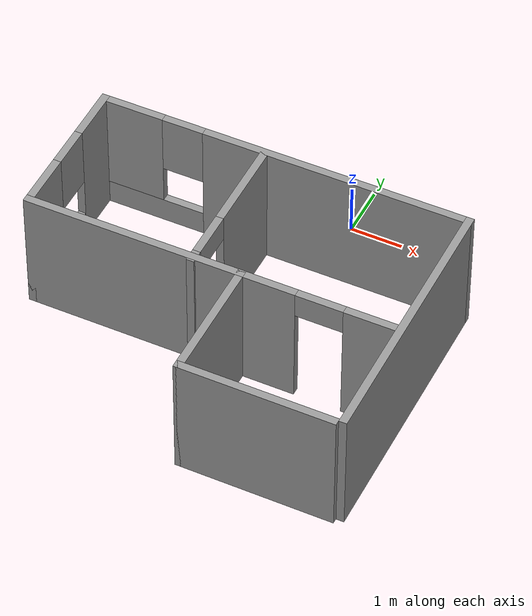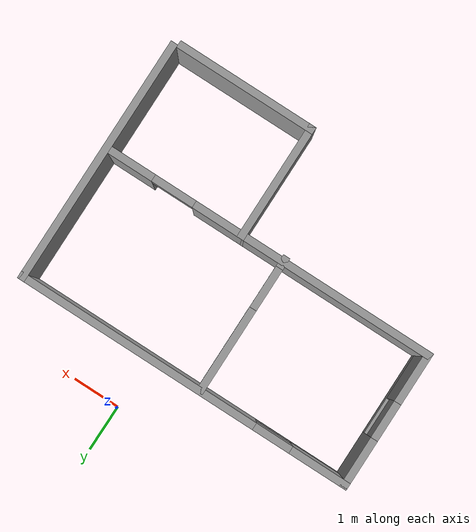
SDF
<?xml version='1.0'?>
<sdf version='1.7'>
  <model name='work'>
    <pose>-0.82 -3.2325 0 0 -0 0</pose>
    <link name='Wall_0'>
      <collision name='Wall_0_Collision'>
        <geometry>
          <box>
            <size>5.25 0.15 2.5</size>
          </box>
        </geometry>
        <pose>0 0 1.25 0 -0 0</pose>
      </collision>
      <visual name='Wall_0_Visual'>
        <pose>0 0 1.25 0 -0 0</pose>
        <geometry>
          <box>
            <size>5.25 0.15 2.5</size>
          </box>
        </geometry>
        <material>
          <script>
            <uri>file://media/materials/scripts/gazebo.material</uri>
            <name>Gazebo/Grey</name>
          </script>
          <ambient>1 1 1 1</ambient>
        </material>
        <meta>
          <layer>0</layer>
        </meta>
      </visual>
      <pose>3.55 -0.5075 0 0 -0 1.5708</pose>
    </link>
    <link name='Wall_1'>
      <pose>-0 2.0425 0 0 -0 3.14159</pose>
      <visual name='Wall_1_Visual_0'>
        <pose>-1.0325 0 1.25 0 -0 0</pose>
        <geometry>
          <box>
            <size>5.185 0.15 2.5</size>
          </box>
        </geometry>
        <material>
          <script>
            <uri>file://media/materials/scripts/gazebo.material</uri>
            <name>Gazebo/Grey</name>
          </script>
          <ambient>1 1 1 1</ambient>
        </material>
        <meta>
          <layer>0</layer>
        </meta>
      </visual>
      <collision name='Wall_1_Collision_0'>
        <geometry>
          <box>
            <size>5.185 0.15 2.5</size>
          </box>
        </geometry>
        <pose>-1.0325 0 1.25 0 -0 0</pose>
      </collision>
      <visual name='Wall_1_Visual_1'>
        <pose>2.5925 0 0.25 0 -0 0</pose>
        <geometry>
          <box>
            <size>2.065 0.15 0.5</size>
          </box>
        </geometry>
        <material>
          <script>
            <uri>file://media/materials/scripts/gazebo.material</uri>
            <name>Gazebo/Grey</name>
          </script>
          <ambient>1 1 1 1</ambient>
        </material>
        <meta>
          <layer>0</layer>
        </meta>
      </visual>
      <collision name='Wall_1_Collision_1'>
        <geometry>
          <box>
            <size>2.065 0.15 0.5</size>
          </box>
        </geometry>
        <pose>2.5925 0 0.25 0 -0 0</pose>
      </collision>
      <visual name='Wall_1_Visual_2'>
        <pose>2.9925 0 1.5 0 -0 0</pose>
        <geometry>
          <box>
            <size>1.265 0.15 2</size>
          </box>
        </geometry>
        <material>
          <script>
            <uri>file://media/materials/scripts/gazebo.material</uri>
            <name>Gazebo/Grey</name>
          </script>
          <ambient>1 1 1 1</ambient>
        </material>
        <meta>
          <layer>0</layer>
        </meta>
      </visual>
      <collision name='Wall_1_Collision_2'>
        <geometry>
          <box>
            <size>1.265 0.15 2</size>
          </box>
        </geometry>
        <pose>2.9925 0 1.5 0 -0 0</pose>
      </collision>
      <visual name='Wall_1_Visual_3'>
        <pose>1.96 0 1.9 0 -0 0</pose>
        <geometry>
          <box>
            <size>0.8 0.15 1.2</size>
          </box>
        </geometry>
        <material>
          <script>
            <uri>file://media/materials/scripts/gazebo.material</uri>
            <name>Gazebo/Grey</name>
          </script>
          <ambient>1 1 1 1</ambient>
        </material>
        <meta>
          <layer>0</layer>
        </meta>
      </visual>
      <collision name='Wall_1_Collision_3'>
        <geometry>
          <box>
            <size>0.8 0.15 1.2</size>
          </box>
        </geometry>
        <pose>1.96 0 1.9 0 -0 0</pose>
      </collision>
    </link>
    <link name='Wall_2'>
      <pose>-3.55 0.6175 0 0 -0 -1.5708</pose>
      <visual name='Wall_2_Visual_0'>
        <pose>-0.9625 0 1.25 0 -0 0</pose>
        <geometry>
          <box>
            <size>1.075 0.15 2.5</size>
          </box>
        </geometry>
        <material>
          <script>
            <uri>file://media/materials/scripts/gazebo.material</uri>
            <name>Gazebo/Grey</name>
          </script>
          <ambient>1 1 1 1</ambient>
        </material>
        <meta>
          <layer>0</layer>
        </meta>
      </visual>
      <collision name='Wall_2_Collision_0'>
        <geometry>
          <box>
            <size>1.075 0.15 2.5</size>
          </box>
        </geometry>
        <pose>-0.9625 0 1.25 0 -0 0</pose>
      </collision>
      <visual name='Wall_2_Visual_1'>
        <pose>0.5375 0 0.25 0 -0 0</pose>
        <geometry>
          <box>
            <size>1.925 0.15 0.5</size>
          </box>
        </geometry>
        <material>
          <script>
            <uri>file://media/materials/scripts/gazebo.material</uri>
            <name>Gazebo/Grey</name>
          </script>
          <ambient>1 1 1 1</ambient>
        </material>
        <meta>
          <layer>0</layer>
        </meta>
      </visual>
      <collision name='Wall_2_Collision_1'>
        <geometry>
          <box>
            <size>1.925 0.15 0.5</size>
          </box>
        </geometry>
        <pose>0.5375 0 0.25 0 -0 0</pose>
      </collision>
      <visual name='Wall_2_Visual_2'>
        <pose>0.9375 0 1.5 0 -0 0</pose>
        <geometry>
          <box>
            <size>1.125 0.15 2</size>
          </box>
        </geometry>
        <material>
          <script>
            <uri>file://media/materials/scripts/gazebo.material</uri>
            <name>Gazebo/Grey</name>
          </script>
          <ambient>1 1 1 1</ambient>
        </material>
        <meta>
          <layer>0</layer>
        </meta>
      </visual>
      <collision name='Wall_2_Collision_2'>
        <geometry>
          <box>
            <size>1.125 0.15 2</size>
          </box>
        </geometry>
        <pose>0.9375 0 1.5 0 -0 0</pose>
      </collision>
      <visual name='Wall_2_Visual_3'>
        <pose>-0.025 0 1.9 0 -0 0</pose>
        <geometry>
          <box>
            <size>0.8 0.15 1.2</size>
          </box>
        </geometry>
        <material>
          <script>
            <uri>file://media/materials/scripts/gazebo.material</uri>
            <name>Gazebo/Grey</name>
          </script>
          <ambient>1 1 1 1</ambient>
        </material>
        <meta>
          <layer>0</layer>
        </meta>
      </visual>
      <collision name='Wall_2_Collision_3'>
        <geometry>
          <box>
            <size>0.8 0.15 1.2</size>
          </box>
        </geometry>
        <pose>-0.025 0 1.9 0 -0 0</pose>
      </collision>
    </link>
    <link name='Wall_3'>
      <collision name='Wall_3_Collision'>
        <geometry>
          <box>
            <size>4.25 0.15 2.5</size>
          </box>
        </geometry>
        <pose>0 0 1.25 0 -0 0</pose>
      </collision>
      <visual name='Wall_3_Visual'>
        <pose>0 0 1.25 0 -0 0</pose>
        <geometry>
          <box>
            <size>4.25 0.15 2.5</size>
          </box>
        </geometry>
        <material>
          <script>
            <uri>file://media/materials/scripts/gazebo.material</uri>
            <name>Gazebo/Grey</name>
          </script>
          <ambient>1 1 1 1</ambient>
        </material>
        <meta>
          <layer>0</layer>
        </meta>
      </visual>
      <pose>-1.5 -0.8075 0 0 -0 0</pose>
    </link>
    <link name='Wall_4'>
      <collision name='Wall_4_Collision'>
        <geometry>
          <box>
            <size>2.5 0.15 2.5</size>
          </box>
        </geometry>
        <pose>0 0 1.25 0 -0 0</pose>
      </collision>
      <visual name='Wall_4_Visual'>
        <pose>0 0 1.25 0 -0 0</pose>
        <geometry>
          <box>
            <size>2.5 0.15 2.5</size>
          </box>
        </geometry>
        <material>
          <script>
            <uri>file://media/materials/scripts/gazebo.material</uri>
            <name>Gazebo/Grey</name>
          </script>
          <ambient>1 1 1 1</ambient>
        </material>
        <meta>
          <layer>0</layer>
        </meta>
      </visual>
      <pose>0.55 -1.9825 0 0 -0 -1.5708</pose>
    </link>
    <link name='Wall_5'>
      <collision name='Wall_5_Collision'>
        <geometry>
          <box>
            <size>3 0.15 2.5</size>
          </box>
        </geometry>
        <pose>0 0 1.25 0 -0 0</pose>
      </collision>
      <visual name='Wall_5_Visual'>
        <pose>0 0 1.25 0 -0 0</pose>
        <geometry>
          <box>
            <size>3 0.15 2.5</size>
          </box>
        </geometry>
        <material>
          <script>
            <uri>file://media/materials/scripts/gazebo.material</uri>
            <name>Gazebo/Grey</name>
          </script>
          <ambient>1 1 1 1</ambient>
        </material>
        <meta>
          <layer>0</layer>
        </meta>
      </visual>
      <pose>1.975 -3.1575 0 0 -0 0</pose>
    </link>
    <link name='Wall_7'>
      <pose>-0.36 0.5775 0 0 -0 -1.5708</pose>
      <visual name='Wall_7_Visual_0'>
        <pose>-0.5775 0 1.25 0 -0 0</pose>
        <geometry>
          <box>
            <size>1.845 0.15 2.5</size>
          </box>
        </geometry>
        <material>
          <script>
            <uri>file://media/materials/scripts/gazebo.material</uri>
            <name>Gazebo/Grey</name>
          </script>
          <ambient>1 1 1 1</ambient>
        </material>
        <meta>
          <layer>0</layer>
        </meta>
      </visual>
      <collision name='Wall_7_Collision_0'>
        <geometry>
          <box>
            <size>1.845 0.15 2.5</size>
          </box>
        </geometry>
        <pose>-0.5775 0 1.25 0 -0 0</pose>
      </collision>
      <visual name='Wall_7_Visual_1'>
        <pose>1.3725 0 1.25 0 -0 0</pose>
        <geometry>
          <box>
            <size>0.255 0.15 2.5</size>
          </box>
        </geometry>
        <material>
          <script>
            <uri>file://media/materials/scripts/gazebo.material</uri>
            <name>Gazebo/Grey</name>
          </script>
          <ambient>1 1 1 1</ambient>
        </material>
        <meta>
          <layer>0</layer>
        </meta>
      </visual>
      <collision name='Wall_7_Collision_1'>
        <geometry>
          <box>
            <size>0.255 0.15 2.5</size>
          </box>
        </geometry>
        <pose>1.3725 0 1.25 0 -0 0</pose>
      </collision>
      <visual name='Wall_7_Visual_2'>
        <pose>0.795 0 2.25 0 -0 0</pose>
        <geometry>
          <box>
            <size>0.9 0.15 0.5</size>
          </box>
        </geometry>
        <material>
          <script>
            <uri>file://media/materials/scripts/gazebo.material</uri>
            <name>Gazebo/Grey</name>
          </script>
          <ambient>1 1 1 1</ambient>
        </material>
        <meta>
          <layer>0</layer>
        </meta>
      </visual>
      <collision name='Wall_7_Collision_2'>
        <geometry>
          <box>
            <size>0.9 0.15 0.5</size>
          </box>
        </geometry>
        <pose>0.795 0 2.25 0 -0 0</pose>
      </collision>
    </link>
    <link name='Wall_9'>
      <pose>1.975 -0.8075 0 0 -0 0</pose>
      <visual name='Wall_9_Visual_0'>
        <pose>-0.9325 0 1.25 0 -0 0</pose>
        <geometry>
          <box>
            <size>1.135 0.15 2.5</size>
          </box>
        </geometry>
        <material>
          <script>
            <uri>file://media/materials/scripts/gazebo.material</uri>
            <name>Gazebo/Grey</name>
          </script>
          <ambient>1 1 1 1</ambient>
        </material>
        <meta>
          <layer>0</layer>
        </meta>
      </visual>
      <collision name='Wall_9_Collision_0'>
        <geometry>
          <box>
            <size>1.135 0.15 2.5</size>
          </box>
        </geometry>
        <pose>-0.9325 0 1.25 0 -0 0</pose>
      </collision>
      <visual name='Wall_9_Visual_1'>
        <pose>1.0175 0 1.25 0 -0 0</pose>
        <geometry>
          <box>
            <size>0.965 0.15 2.5</size>
          </box>
        </geometry>
        <material>
          <script>
            <uri>file://media/materials/scripts/gazebo.material</uri>
            <name>Gazebo/Grey</name>
          </script>
          <ambient>1 1 1 1</ambient>
        </material>
        <meta>
          <layer>0</layer>
        </meta>
      </visual>
      <collision name='Wall_9_Collision_1'>
        <geometry>
          <box>
            <size>0.965 0.15 2.5</size>
          </box>
        </geometry>
        <pose>1.0175 0 1.25 0 -0 0</pose>
      </collision>
      <visual name='Wall_9_Visual_2'>
        <pose>0.085 0 2.25 0 -0 0</pose>
        <geometry>
          <box>
            <size>0.9 0.15 0.5</size>
          </box>
        </geometry>
        <material>
          <script>
            <uri>file://media/materials/scripts/gazebo.material</uri>
            <name>Gazebo/Grey</name>
          </script>
          <ambient>1 1 1 1</ambient>
        </material>
        <meta>
          <layer>0</layer>
        </meta>
      </visual>
      <collision name='Wall_9_Collision_2'>
        <geometry>
          <box>
            <size>0.9 0.15 0.5</size>
          </box>
        </geometry>
        <pose>0.085 0 2.25 0 -0 0</pose>
      </collision>
    </link>
    <static>1</static>
  </model>
</sdf>
